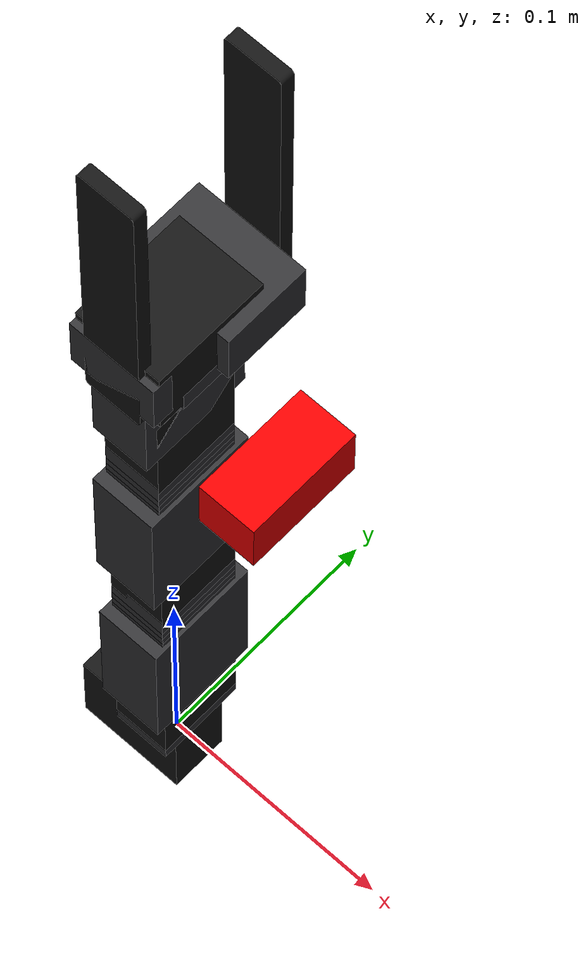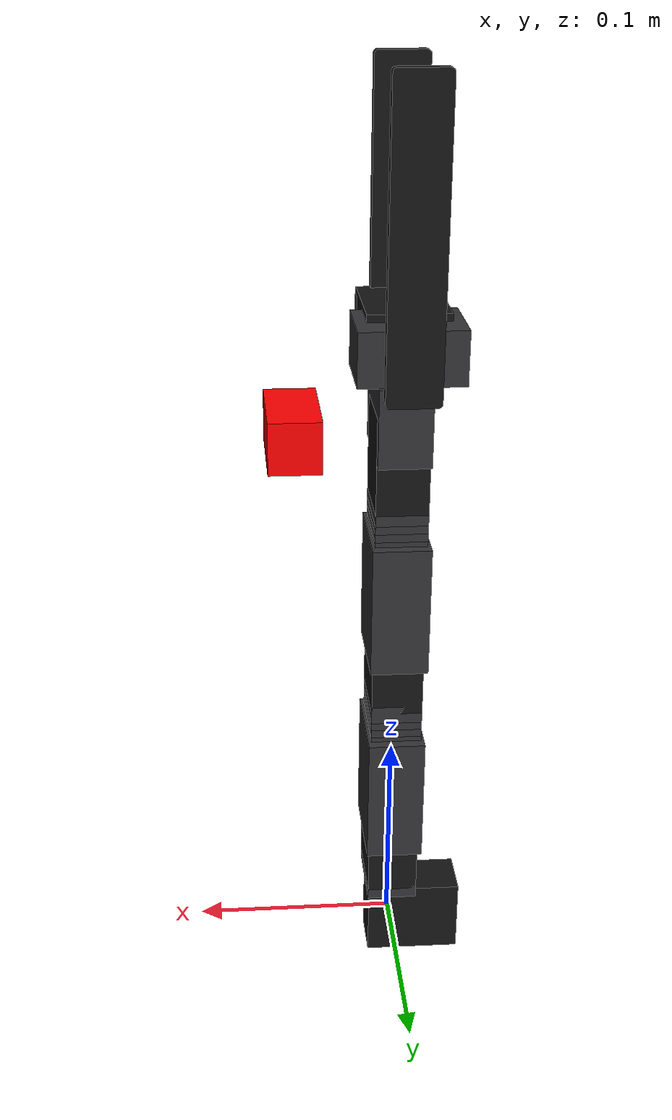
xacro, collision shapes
<?xml version="1.0"?>
<robot name="meu_braco" xmlns:xacro="http://www.ros.org/wiki/xacro">

    <!-- Argumento para decidir se usamos o hardware real ou simulação -->
    <xacro:arg name="use_real_hardware" default="false"/>

    <!-- Carrega a interface de controlo correta baseada no argumento -->
    <xacro:if value="$(arg use_real_hardware)">
        <xacro:include filename="$(find arm_description)/urdf/real_robot.ros2_control.xacro"/>
    </xacro:if>
    <xacro:unless value="$(arg use_real_hardware)">
        <xacro:include filename="$(find arm_description)/urdf/model_ros2_control.xacro"/>
    </xacro:unless>

    <!-- Define os limites das juntas -->
    <xacro:property name="joints_vlimit" value="1.571"/>
    <xacro:property name="pan_llimit" value="-2.617"/>
    <xacro:property name="pan_ulimit" value="2.617"/>
    <xacro:property name="shoulder_llimit" value="-2.2"/>
    <xacro:property name="shoulder_ulimit" value="2.16"/>
    <xacro:property name="elbow_llimit" value="-2.42"/>
    <xacro:property name="elbow_ulimit" value="2.38"/>
    <xacro:property name="wrist_llimit" value="-1.72"/>
    <xacro:property name="wrist_ulimit" value="1.68"/>

    <!-- Inclui a descrição visual/física do braço -->
    <xacro:include filename="$(find arm_description)/urdf/turtlebot_arm.xacro"/>

    <link name="base_link"/>

    <!-- Instancia o braço robótico no mundo -->
    <xacro:turtlebot_arm parent="base_link" color="Gray" gripper_color="Gray"
                         pincher_gripper="false" turtlebot_gripper="false"
                         crane_plus_gripper="true">
        <origin xyz="0 0 0"/>
    </xacro:turtlebot_arm>

    <link name="camera_link">
      <visual>
        <!-- Define a aparência da câmara no simulador -->
        <geometry>
          <box size="0.025 0.05 0.025"/>
        </geometry>
        <material name="red">
          <color rgba="1.0 0.0 0.0 1.0"/>
        </material>
      </visual>
      <collision>
        <!-- Define a forma de colisão da câmara -->
        <geometry>
          <box size="0.025 0.05 0.025"/>
        </geometry>
      </collision>
      <inertial>
        <!-- Propriedades de massa e inércia para a simulação física -->
        <mass value="0.01"/>
        <inertia ixx="1e-6" ixy="0" ixz="0" iyy="1e-6" iyz="0" izz="1e-6"/>
      </inertial>
    </link>

    <joint name="camera_joint" type="fixed">
      <parent link="wrist_pitch_link"/>
      <child link="camera_link"/>

      <origin xyz="0.05 0 0" rpy="0 0 0"/>
    </joint>

    <gazebo reference="camera_link">
      <!-- Define o 'link' como um sensor do tipo 'camera' -->
      <sensor type="camera" name="my_camera_sensor">
        <update_rate>30.0</update_rate>
        <camera name="head">
          <!-- Configurações da lente da câmara virtual -->
          <horizontal_fov>1.3962634</horizontal_fov>
          <image>
            <width>800</width>
            <height>800</height>
            <format>R8G8B8</format>
          </image>
          <clip>
            <near>0.02</near>
            <far>300</far>
          </clip>
        </camera>

        <!-- publica como tópicos ROS 2 que o RViz e outros nós podem usar. -->
        <plugin name="camera_controller" filename="libgazebo_ros_camera.so">
          <ros>
            <!-- Remapeia o nome do tópico de saída para /camera/image_raw -->
            <namespace>/camera</namespace>
            <argument>image_raw:=image_raw</argument>
            <argument>camera_info:=camera_info</argument>
          </ros>
          <camera_frame>camera_link</camera_frame>
        </plugin>
      </sensor>
    </gazebo>

</robot>

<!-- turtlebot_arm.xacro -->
<robot xmlns:xacro="http://www.ros.org/wiki/xacro">
  <xacro:include filename="$(find arm_description)/urdf/meu_braco.hardware.xacro"/>

  <material name="White"><color rgba="0.87 0.90 0.87 1.0"/></material>
  <material name="Black"><color rgba="0.08 0.08 0.08 1.0"/></material>
  <material name="Gray"><color rgba="0.2 0.2 0.21 1.0"/></material>
  <material name="Green"><color rgba="0.22 0.32 0.14 1.0"/></material>

  <xacro:macro name="crane_plus_gripper_only" params="parent *origin">
    <xacro:crane_bioloid_f3_fixed parent="${parent}" name="crane_plus_internal_wrist_joiner" color="Gray">
        <xacro:insert_block name="origin"/>
    </xacro:crane_bioloid_f3_fixed>
    <xacro:crane_dynamixel_ax12_fixed parent="crane_plus_internal_wrist_joiner_link" name="crane_plus_internal_gripper_servo" color="Black">
        <origin xyz="${AX12_SIDE_SCREW_OFFSET} 0 ${F3_SCREW_HEIGHT+AX12_ORIGIN_TO_SIDE_SCREW}" rpy="${M_PI/2} ${M_PI} 0"/>
    </xacro:crane_dynamixel_ax12_fixed>
    <xacro:crane_bioloid_f3_fixed parent="crane_plus_internal_gripper_servo_link" name="crane_plus_internal_fixed_finger_joiner" color="Gray">
        <origin xyz="${AX12_ORIGIN_TO_END_SCREW+F3_SCREW_HEIGHT} 0 0" rpy="-${M_PI/2} 0 ${M_PI/2}"/>
    </xacro:crane_bioloid_f3_fixed>
    <xacro:custom_finger parent="crane_plus_internal_fixed_finger_joiner_link" name="crane_plus_internal_fixed_finger" color="Black">
      <origin xyz="0 0 0" rpy="0 0 ${M_PI}"/>
    </xacro:custom_finger>
    <xacro:crane_bioloid_f2_revolute parent="crane_plus_internal_gripper_servo_link" name="gripper_finger" color="Gray" vlimit="1.571" llimit="-0.6" ulimit="0.508">
        <origin xyz="-${AX12_ORIGIN_TO_AXLE} 0 0" rpy="-${M_PI/2} 0 -${M_PI/2}"/>
    </xacro:crane_bioloid_f2_revolute>
    <xacro:custom_finger parent="gripper_finger_link" name="crane_plus_internal_moving_finger_plate" color="Black">
      <origin xyz="0 0 -${F2_AXLE_HEIGHT}" rpy="${M_PI} 0 0"/>
    </xacro:custom_finger>
  </xacro:macro>

  <xacro:macro name="turtlebot_arm" params="parent color pincher_gripper turtlebot_gripper crane_plus_gripper gripper_color *origin">
    <link name="arm_base_link"/>
    <joint name="arm_base_joint" type="fixed">
      <xacro:insert_block name="origin"/>
      <parent link="${parent}"/>
      <child link="arm_base_link"/>
    </joint>

    <xacro:dynamixel_AX12_fixed parent="arm_base_link" name="arm_shoulder_pan_servo">
      <origin xyz="0 0 0" rpy="${M_PI/2} 0 ${M_PI/2}"/>
    </xacro:dynamixel_AX12_fixed>
    <xacro:bioloid_F3_revolute parent="arm_shoulder_pan_servo_link" name="waist" color="${color}" vlimit="${joints_vlimit}" llimit="${pan_llimit}" ulimit="${pan_ulimit}">
      <origin xyz="0 ${AX12_WIDTH/2} 0" rpy="${-M_PI/2} ${M_PI/2} ${M_PI}"/>
    </xacro:bioloid_F3_revolute>
    <xacro:dynamixel_AX12_fixed parent="waist_link" name="arm_shoulder_lift_servo">
      <origin xyz="0 0 ${-AX12_HEIGHT-F10_HEIGHT+0.001}" rpy="0 ${M_PI} 0"/>
    </xacro:dynamixel_AX12_fixed>
    <xacro:bioloid_F4_revolute parent="arm_shoulder_lift_servo_link" name="shoulder_pitch" color="${color}" vlimit="${joints_vlimit}" llimit="${shoulder_llimit}" ulimit="${shoulder_ulimit}">
      <origin xyz="0 0 0" rpy="0 0 0"/>
    </xacro:bioloid_F4_revolute>
    <xacro:bioloid_F10_fixed parent="shoulder_pitch_link" name="arm_shoulder_F10_0" color="${color}"><origin xyz="0 0 ${F4_HEIGHT+F10_HEIGHT/2}" rpy="0 0 0"/></xacro:bioloid_F10_fixed>
    <xacro:bioloid_F10_fixed parent="arm_shoulder_F10_0_link" name="arm_shoulder_F10_1" color="${color}"><origin xyz="0 0 ${F10_HEIGHT}" rpy="0 0 0"/></xacro:bioloid_F10_fixed>
    <xacro:bioloid_F10_fixed parent="arm_shoulder_F10_1_link" name="arm_shoulder_F10_2" color="${color}"><origin xyz="0 0 ${F10_HEIGHT}" rpy="0 0 0"/></xacro:bioloid_F10_fixed>
    <xacro:bioloid_F3_fixed parent="arm_shoulder_F10_2_link" name="arm_shoulder_F3_0" color="${color}"><origin xyz="0 0 ${F10_HEIGHT/2}" rpy="0 ${M_PI} 0"/></xacro:bioloid_F3_fixed>
    <xacro:dynamixel_AX12_fixed parent="arm_shoulder_F3_0_link" name="arm_elbow_flex_servo"><origin xyz="0 0 ${-AX12_HEIGHT-F10_HEIGHT+0.001}" rpy="0 ${M_PI} 0"/></xacro:dynamixel_AX12_fixed>
    <xacro:bioloid_F4_revolute parent="arm_elbow_flex_servo_link" name="elbow_pitch" color="${color}" vlimit="${joints_vlimit}" llimit="${elbow_llimit}" ulimit="${elbow_ulimit}">
      <origin xyz="0 0 0" rpy="0 0 0"/>
    </xacro:bioloid_F4_revolute>
    <xacro:bioloid_F10_fixed parent="elbow_pitch_link" name="arm_elbow_F10_0" color="${color}"><origin xyz="0 0 ${F4_HEIGHT+F10_HEIGHT/2}" rpy="0 0 0"/></xacro:bioloid_F10_fixed>
    <xacro:bioloid_F10_fixed parent="arm_elbow_F10_0_link" name="arm_elbow_F10_1" color="${color}"><origin xyz="0 0 ${F10_HEIGHT}" rpy="0 0 0"/></xacro:bioloid_F10_fixed>
    <xacro:bioloid_F10_fixed parent="arm_elbow_F10_1_link" name="arm_elbow_F10_2" color="${color}"><origin xyz="0 0 ${F10_HEIGHT}" rpy="0 0 0"/></xacro:bioloid_F10_fixed>
    <xacro:bioloid_F3_fixed parent="arm_elbow_F10_2_link" name="arm_elbow_F3_0" color="${color}"><origin xyz="0 0 ${F10_HEIGHT/2}" rpy="0 ${M_PI} 0"/></xacro:bioloid_F3_fixed>
    <xacro:dynamixel_AX12_fixed parent="arm_elbow_F3_0_link" name="arm_wrist_flex_servo"><origin xyz="0 0 ${-AX12_HEIGHT-F10_HEIGHT+0.001}" rpy="0 ${M_PI} 0"/></xacro:dynamixel_AX12_fixed>
    <xacro:bioloid_F2_revolute parent="arm_wrist_flex_servo_link" name="wrist_pitch" color="${color}" vlimit="${joints_vlimit}" llimit="${wrist_llimit}" ulimit="${wrist_ulimit}">
      <origin xyz="0 0 0" rpy="0 0 0"/>
    </xacro:bioloid_F2_revolute>

    <xacro:if value="${crane_plus_gripper}">
      <xacro:crane_plus_gripper_only parent="wrist_pitch_link">
        <origin xyz="0 0 0.0265" rpy="0 0 ${M_PI/2}"/>
      </xacro:crane_plus_gripper_only>
    </xacro:if>
  </xacro:macro>
</robot>

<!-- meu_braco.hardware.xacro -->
<robot xmlns:xacro="http://ros.org/wiki/xacro">

  <xacro:property name="M_PI" value="3.14159"/>
  <xacro:property name="SCALE_MM" value="0.001"/>

  <xacro:property name="F10_HEIGHT" value="0.004"/>
  <xacro:property name="F4_HEIGHT" value="0.0525"/>
  <xacro:property name="F3_HEIGHT" value="0.009"/>
  <xacro:property name="AX12_HEIGHT" value="0.0385"/>
  <xacro:property name="AX12_WIDTH" value="0.038"/>
  <xacro:property name="AX12_LENGTH" value="0.050"/>
  <xacro:property name="F2_HEIGHT" value="0.0265"/>

  <xacro:property name="CRANE_AX12_WIDTH" value="0.032"/>
  <xacro:property name="CRANE_F2_HEIGHT" value="0.0375"/>
  <xacro:property name="AX12_ORIGIN_TO_SIDE_SCREW" value="0.0135"/>
  <xacro:property name="AX12_ORIGIN_OFFSET_X" value="-0.0015"/>
  <xacro:property name="AX12_SIDE_SCREW_OFFSET" value="0.0028"/>
  <xacro:property name="AX12_ORIGIN_TO_END_SCREW" value="0.024"/>
  <xacro:property name="AX12_ORIGIN_TO_AXLE" value="0.012"/>
  <xacro:property name="AX12_BODY_FULL_HEIGHT" value="0.038"/>
  <xacro:property name="F2_AXLE_HEIGHT" value="0.0265"/>
  <xacro:property name="F3_SCREW_HEIGHT" value="0.0055"/>

  <xacro:macro name="box_inertia" params="mass">
    <inertial>
      <mass value="${mass}" /><origin xyz="0 0 0" rpy="0 0 0" />
      <inertia ixx="0.0001" ixy="0" ixz="0" iyy="0.0001" iyz="0" izz="0.0001" />
    </inertial>
  </xacro:macro>

  <xacro:macro name="dynamixel_AX12_fixed" params="parent name *origin">
    <joint name="${name}_joint" type="fixed"><xacro:insert_block name="origin"/><parent link="${parent}"/><child link="${name}_link"/></joint>
    <link name="${name}_link">
      <xacro:box_inertia mass="0.055"/>
      <visual><origin xyz=" 0 0 0 " rpy="0 0 0"/><geometry><mesh filename="package://arm_description/meshes/ax12_box.stl" scale="${SCALE_MM} ${SCALE_MM} ${SCALE_MM}"/></geometry><material name="Black"/></visual>
      <collision><origin xyz="0.0 0.0 -0.01241" rpy="0 0 0"/><geometry><box size="0.025 0.038 0.04762"/></geometry></collision>
    </link>
  </xacro:macro>

  <xacro:macro name="bioloid_F10_fixed" params="parent name color *origin">
    <joint name="${name}_joint" type="fixed"><xacro:insert_block name="origin"/><parent link="${parent}"/><child link="${name}_link"/></joint>
    <link name="${name}_link">
      <xacro:box_inertia mass="0.004"/>
      <visual><origin xyz=" 0 0 0 " rpy="0 0 0"/><geometry><mesh filename="package://arm_description/meshes/F10.stl" scale="${SCALE_MM} ${SCALE_MM} ${SCALE_MM}"/></geometry><material name="${color}"/></visual>
      <collision><origin xyz="0.0 0.0 0.0" rpy="0 0 0"/><geometry><box size="0.025 0.038 0.004"/></geometry></collision>
    </link>
  </xacro:macro>

  <xacro:macro name="bioloid_F3_fixed" params="parent name color *origin">
    <joint name="${name}_joint" type="fixed"><xacro:insert_block name="origin"/><parent link="${parent}"/><child link="${name}_link"/></joint>
    <link name="${name}_link">
      <xacro:box_inertia mass="0.005"/>
      <visual><origin xyz=" 0 0 0 " rpy="0 0 0"/><geometry><mesh filename="package://arm_description/meshes/F3.stl" scale="${SCALE_MM} ${SCALE_MM} ${SCALE_MM}"/></geometry><material name="${color}"/></visual>
      <collision><origin xyz="0.0 0.0 -0.0045" rpy="0 0 0"/><geometry><box size="0.025 0.038 0.009"/></geometry></collision>
    </link>
  </xacro:macro>

  <xacro:macro name="bioloid_F3_revolute" params="parent name color llimit ulimit vlimit *origin">
    <joint name="${name}_joint" type="revolute"><xacro:insert_block name="origin"/><axis xyz="0 0 -1"/><limit effort="30" velocity="${vlimit}" lower="${llimit}" upper="${ulimit}"/><parent link="${parent}"/><child link="${name}_link"/></joint>
    <link name="${name}_link">
      <xacro:box_inertia mass="0.008"/>
      <visual><origin xyz=" 0 0 0 " rpy="0 0 0"/><geometry><mesh filename="package://arm_description/meshes/F3.stl" scale="${SCALE_MM} ${SCALE_MM} ${SCALE_MM}"/></geometry><material name="${color}"/></visual>
      <collision><origin xyz="0.0 0.0 -0.0045" rpy="0 0 0"/><geometry><box size="0.025 0.038 0.009"/></geometry></collision>
    </link>
  </xacro:macro>

  <xacro:macro name="bioloid_F2_revolute" params="parent name color llimit ulimit vlimit *origin">
    <joint name="${name}_joint" type="revolute"><xacro:insert_block name="origin"/><axis xyz="0 1 0"/><limit effort="30" velocity="${vlimit}" lower="${llimit}" upper="${ulimit}"/><parent link="${parent}"/><child link="${name}_link"/></joint>
    <link name="${name}_link">
      <xacro:box_inertia mass="0.010"/>
      <visual><origin xyz=" 0 0 0 " rpy="0 0 0"/><geometry><mesh filename="package://arm_description/meshes/F2.stl" scale="${SCALE_MM} ${SCALE_MM} ${SCALE_MM}"/></geometry><material name="${color}"/></visual>
      <collision><origin xyz="0.0 0.0 0.00775" rpy="0 0 0"/><geometry><box size="0.025 0.0485 0.0375"/></geometry></collision>
    </link>
  </xacro:macro>

  <xacro:macro name="bioloid_F4_revolute" params="parent name color llimit ulimit vlimit *origin">
    <joint name="${name}_joint" type="revolute"><xacro:insert_block name="origin"/><axis xyz="0 1 0"/><limit effort="30" velocity="${vlimit}" lower="${llimit}" upper="${ulimit}"/><parent link="${parent}"/><child link="${name}_link"/></joint>
    <link name="${name}_link">
      <xacro:box_inertia mass="0.016"/>
      <visual><origin xyz=" 0 0 0 " rpy="0 0 0"/><geometry><mesh filename="package://arm_description/meshes/F4.stl" scale="${SCALE_MM} ${SCALE_MM} ${SCALE_MM}"/></geometry><material name="${color}"/></visual>
      <collision><origin xyz="0.0 0.0 0.0215" rpy="0 0 0"/><geometry><box size="0.028 0.0485 0.065"/></geometry></collision>
    </link>
  </xacro:macro>

  <xacro:macro name="crane_dynamixel_ax12_fixed" params="parent name color *origin">
    <joint name="${name}_joint" type="fixed"><xacro:insert_block name="origin"/><parent link="${parent}"/><child link="${name}_link"/></joint>
    <link name="${name}_link">
      <xacro:box_inertia mass="0.055"/>
      <visual><origin xyz="0 0 0" rpy="-${M_PI/2} 0 0"/><geometry><mesh filename="package://arm_description/meshes/crane_plus_ax12.stl" scale="${SCALE_MM} ${SCALE_MM} ${SCALE_MM}"/></geometry><material name="${color}"/></visual>
      <collision><origin xyz="${0-AX12_ORIGIN_OFFSET_X} 0 0" rpy="0 0 0"/><geometry><box size="${AX12_LENGTH} ${CRANE_AX12_WIDTH} ${AX12_BODY_FULL_HEIGHT}"/></geometry></collision>
    </link>
  </xacro:macro>

  <xacro:macro name="crane_bioloid_f2_revolute" params="parent name color llimit ulimit vlimit *origin">
    <joint name="${name}_joint" type="revolute"><xacro:insert_block name="origin"/><axis xyz="0 -1 0"/><limit effort="30" velocity="${vlimit}" lower="${llimit}" upper="${ulimit}"/><parent link="${parent}"/><child link="${name}_link"/></joint>
    <link name="${name}_link">
      <xacro:box_inertia mass="0.01"/>
      <visual><origin xyz="0 0 0" rpy="${M_PI/2} 0 0"/><geometry><mesh filename="package://arm_description/meshes/f2.stl" scale="${SCALE_MM} ${SCALE_MM} ${SCALE_MM}"/></geometry><material name="${color}"/></visual>
      <collision><origin xyz="0 0 -${F2_AXLE_HEIGHT-CRANE_F2_HEIGHT/2}" rpy="0 0 0"/><geometry><box size="0.025 0.0485 ${CRANE_F2_HEIGHT}"/></geometry></collision>
    </link>
  </xacro:macro>

  <xacro:macro name="crane_bioloid_f3_fixed" params="parent name color *origin">
    <joint name="${name}_joint" type="fixed"><xacro:insert_block name="origin"/><parent link="${parent}"/><child link="${name}_link"/></joint>
    <link name="${name}_link">
      <xacro:box_inertia mass="0.005"/>
      <visual><origin xyz="0 0 0" rpy="${M_PI/2} 0 ${M_PI}"/><geometry><mesh filename="package://arm_description/meshes/f3.stl" scale="${SCALE_MM} ${SCALE_MM} ${SCALE_MM}"/></geometry><material name="${color}"/></visual>
      <collision><origin xyz="0 0 0.0045" rpy="0 0 0"/><geometry><box size="0.025 0.038 0.009"/></geometry></collision>
    </link>
  </xacro:macro>

  <xacro:macro name="custom_finger" params="parent name color *origin">
    <joint name="${name}_joint" type="fixed"><xacro:insert_block name="origin"/><parent link="${parent}"/><child link="${name}_link"/></joint>
    <link name="${name}_link">
      <xacro:box_inertia mass="0.01"/>
      <visual><origin xyz="0.05 0 0" rpy="0 0 0"/><geometry><mesh filename="package://arm_description/meshes/garra.stl" scale="${SCALE_MM} ${SCALE_MM} ${SCALE_MM}"/></geometry><material name="${color}"/></visual>
      <collision><origin xyz="0.05 0 0" rpy="0 0 0"/><geometry><mesh filename="package://arm_description/meshes/garra.stl" scale="${SCALE_MM} ${SCALE_MM} ${SCALE_MM}"/></geometry></collision>
    </link>
  </xacro:macro>
</robot>
